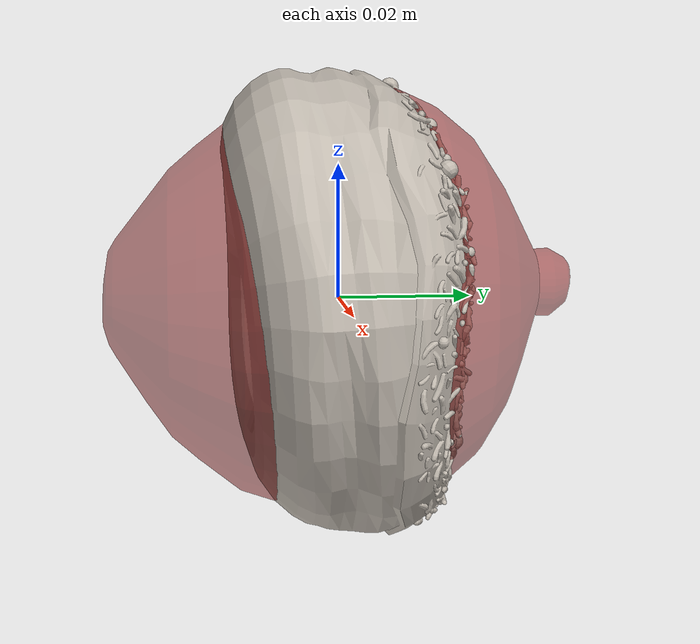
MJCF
<mujoco model="onion_7">
  <asset>
    <mesh file="visual/model_normalized_0.obj" name="model_normalized_0_vis" scale="0.07 0.07 0.07" refquat="0.7071067811865475 0.7071067811865476 0.0 0.0" />
    <texture type="2d" name="image0" file="visual/image0.png" />
    <material name="Onion_Material" texture="image0" specular="0.5" shininess="0.359999993" />
    <mesh file="collision/collision_mesh_collision_0.obj" name="onion_collision_mesh_0" scale="0.07 0.07 0.07" refquat="0.7071067811865475 0.7071067811865476 0.0 0.0" />
    <mesh file="collision/collision_mesh_collision_1.obj" name="onion_collision_mesh_1" scale="0.07 0.07 0.07" refquat="0.7071067811865475 0.7071067811865476 0.0 0.0" />
  </asset>
  <default>
    <default class="region">
      <geom group="1" conaffinity="0" contype="0" rgba="0 1 0 0" />
    </default>
    <default class="collision">
      <geom group="0" rgba="0.5 0 0 0.5" density="1000.0" />
    </default>
  </default>
  <worldbody>
    <body>
      <body name="object">
        <geom solimp="0.998 0.998 0.001" solref="0.001 1" density="100" friction="0.95 0.3 0.1" type="mesh" mesh="model_normalized_0_vis" conaffinity="0" contype="0" group="1" material="Onion_Material" />
        <geom class="region" name="reg_bbox" type="box" pos="0.00000 -0.00000 0.00000" size="0.03195 0.03500 0.03195" />
        <geom mesh="onion_collision_mesh_0" type="mesh" class="collision" />
        <geom mesh="onion_collision_mesh_1" type="mesh" class="collision" />
      </body>
    </body>
  </worldbody>
</mujoco>
